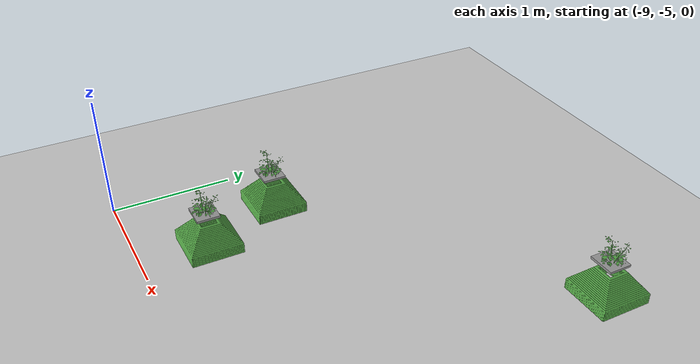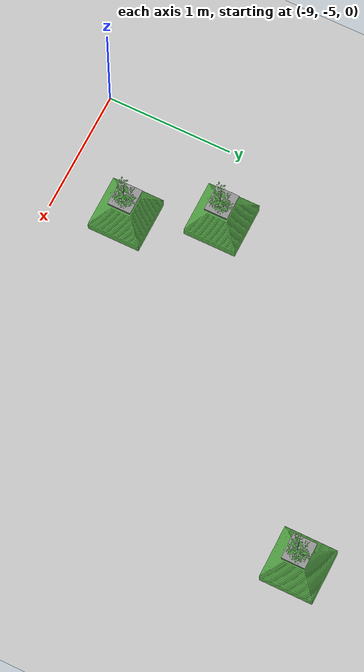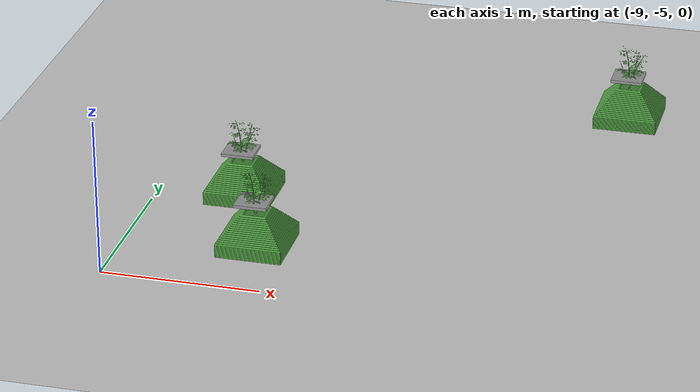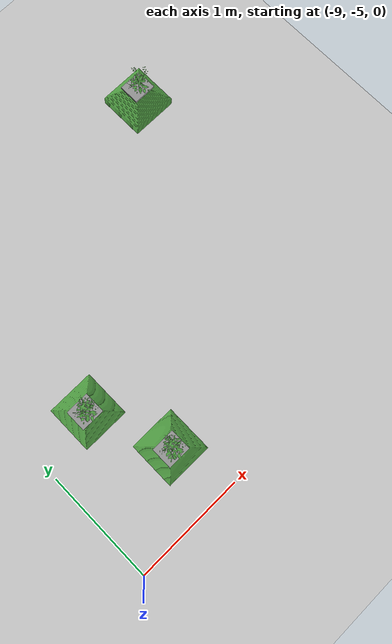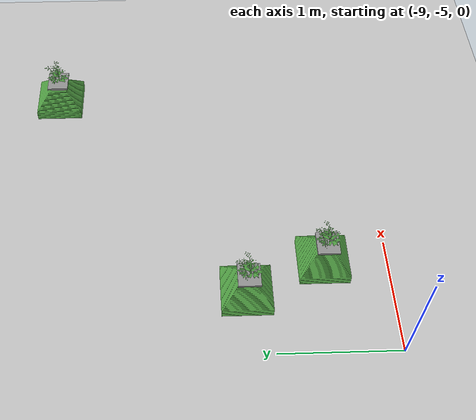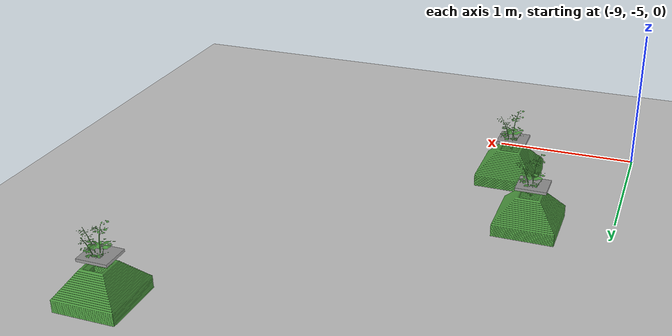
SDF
<sdf version="1.6">
 <world name="default">
  <model name="ground_plane">
   <static>1</static>
   <link name="link">
    <collision name="collision">
     <geometry><plane><normal>0 0 1</normal><size>100 100</size></plane></geometry>
     <surface><friction><ode><mu>100</mu><mu2>50</mu2></ode></friction></surface>
    </collision>
    <visual name="visual">
     <cast_shadows>0</cast_shadows>
     <geometry><plane><normal>0 0 1</normal><size>100 100</size></plane></geometry>
     <material>
      <script><uri>file://media/materials/scripts/gazebo.material</uri><name>Gazebo/Grey</name></script>
     </material>
    </visual>
   </link>
  </model>
  <model name="plant_10">
   <link name="link_0">
    <inertial>
     <mass>1</mass>
     <inertia>
      <ixx>0.0134051</ixx>
      <ixy>0</ixy>
      <ixz>0</ixz>
      <iyy>0.0134051</iyy>
      <iyz>0</iyz>
      <izz>0.0254102</izz>
     </inertia>
    </inertial>
    <gravity>0</gravity>
    <visual name="visual">
     <geometry><mesh><uri>model://square_pot/pot.stl</uri><scale>0.033 0.033 0.02</scale></mesh></geometry>
     <material>
      <lighting>1</lighting>
      <script><uri>file://media/materials/scripts/gazebo.material</uri><name>Gazebo/Grass</name></script>
      <ambient>0.3 0.3 0.3 1</ambient>
      <diffuse>0.7 0.7 0.7 1</diffuse>
      <specular>0.01 0.01 0.01 1</specular>
      <emissive>0 0 0 1</emissive>
      <shader type="vertex"><normal_map>__default__</normal_map></shader>
     </material>
    </visual>
    <collision name="collision">
     <pose>0 0 0.25 0 -0 0</pose>
     <geometry><box><size>0.4 0.4 0.4</size></box></geometry>
     <surface>
      <friction>
       <ode><mu>1</mu><mu2>1</mu2><fdir1>0 0 0</fdir1><slip1>0</slip1><slip2>0</slip2></ode>
       <torsional>
        <coefficient>1</coefficient>
        <patch_radius>0</patch_radius>
        <surface_radius>0</surface_radius>
        <use_patch_radius>1</use_patch_radius>
        <ode><slip>0</slip></ode>
       </torsional>
      </friction>
      <bounce><restitution_coefficient>0</restitution_coefficient><threshold>1e+06</threshold></bounce>
      <contact>
       <collide_without_contact>1</collide_without_contact>
       <collide_without_contact_bitmask>1</collide_without_contact_bitmask>
       <collide_bitmask>1</collide_bitmask>
       <ode>
        <soft_cfm>0</soft_cfm>
        <soft_erp>0.2</soft_erp>
        <kp>1e+13</kp>
        <kd>1</kd>
        <max_vel>0.01</max_vel>
        <min_depth>0</min_depth>
       </ode>
       <bullet>
        <split_impulse>1</split_impulse>
        <split_impulse_penetration_threshold>-0.01</split_impulse_penetration_threshold>
        <soft_cfm>0</soft_cfm>
        <soft_erp>0.2</soft_erp>
        <kp>1e+13</kp>
        <kd>1</kd>
       </bullet>
      </contact>
     </surface>
    </collision>
   </link>
   <link name="link_0_0">
    <pose>-0.011441 -0.008338 0.308474 0 -0 0</pose>
    <inertial>
     <mass>0.000736153</mass>
     <inertia>
      <ixx>2.11165e-06</ixx>
      <ixy>0</ixy>
      <ixz>0</ixz>
      <iyy>2.64382e-06</iyy>
      <iyz>0</iyz>
      <izz>4.70976e-06</izz>
     </inertia>
    </inertial>
    <visual name="visual">
     <geometry><box><size>0.206678 0.18452 0.019291</size></box></geometry>
     <material>
      <lighting>1</lighting>
      <script><uri>file://media/materials/scripts/gazebo.material</uri><name>Gazebo/Grey</name></script>
      <ambient>0.3 0.3 0.3 1</ambient>
      <diffuse>0.7 0.7 0.7 1</diffuse>
      <specular>0.01 0.01 0.01 1</specular>
      <emissive>0 0 0 1</emissive>
     </material>
    </visual>
    <collision name="collision">
     <geometry><box><size>0.206678 0.18452 0.019291</size></box></geometry>
     <surface>
      <friction>
       <ode><mu>1</mu><mu2>1</mu2><fdir1>0 0 0</fdir1><slip1>0</slip1><slip2>0</slip2></ode>
       <torsional>
        <coefficient>1</coefficient>
        <patch_radius>0</patch_radius>
        <surface_radius>0</surface_radius>
        <use_patch_radius>1</use_patch_radius>
        <ode><slip>0</slip></ode>
       </torsional>
      </friction>
      <bounce><restitution_coefficient>0</restitution_coefficient><threshold>1e+06</threshold></bounce>
      <contact>
       <collide_without_contact>0</collide_without_contact>
       <collide_without_contact_bitmask>1</collide_without_contact_bitmask>
       <collide_bitmask>1</collide_bitmask>
       <ode>
        <soft_cfm>0</soft_cfm>
        <soft_erp>0.2</soft_erp>
        <kp>1e+13</kp>
        <kd>1</kd>
        <max_vel>0.01</max_vel>
        <min_depth>0</min_depth>
       </ode>
       <bullet>
        <split_impulse>1</split_impulse>
        <split_impulse_penetration_threshold>-0.01</split_impulse_penetration_threshold>
        <soft_cfm>0</soft_cfm>
        <soft_erp>0.2</soft_erp>
        <kp>1e+13</kp>
        <kd>1</kd>
       </bullet>
      </contact>
     </surface>
    </collision>
   </link>
   <static>1</static>
   <pose>-6.28126 -2.11881 0 0 -0 0</pose>
  </model>
  <model name="plant_54">
   <link name="link_0">
    <inertial>
     <mass>1</mass>
     <inertia>
      <ixx>0.0134051</ixx>
      <ixy>0</ixy>
      <ixz>0</ixz>
      <iyy>0.0134051</iyy>
      <iyz>0</iyz>
      <izz>0.0254102</izz>
     </inertia>
    </inertial>
    <gravity>0</gravity>
    <visual name="visual">
     <geometry><mesh><uri>model://square_pot/pot.stl</uri><scale>0.033 0.033 0.02</scale></mesh></geometry>
     <material>
      <lighting>1</lighting>
      <script><uri>file://media/materials/scripts/gazebo.material</uri><name>Gazebo/Grass</name></script>
      <ambient>0.3 0.3 0.3 1</ambient>
      <diffuse>0.7 0.7 0.7 1</diffuse>
      <specular>0.01 0.01 0.01 1</specular>
      <emissive>0 0 0 1</emissive>
      <shader type="vertex"><normal_map>__default__</normal_map></shader>
     </material>
    </visual>
    <collision name="collision">
     <pose>0 0 0.25 0 -0 0</pose>
     <geometry><box><size>0.4 0.4 0.4</size></box></geometry>
     <surface>
      <friction>
       <ode><mu>1</mu><mu2>1</mu2><fdir1>0 0 0</fdir1><slip1>0</slip1><slip2>0</slip2></ode>
       <torsional>
        <coefficient>1</coefficient>
        <patch_radius>0</patch_radius>
        <surface_radius>0</surface_radius>
        <use_patch_radius>1</use_patch_radius>
        <ode><slip>0</slip></ode>
       </torsional>
      </friction>
      <bounce><restitution_coefficient>0</restitution_coefficient><threshold>1e+06</threshold></bounce>
      <contact>
       <collide_without_contact>1</collide_without_contact>
       <collide_without_contact_bitmask>1</collide_without_contact_bitmask>
       <collide_bitmask>1</collide_bitmask>
       <ode>
        <soft_cfm>0</soft_cfm>
        <soft_erp>0.2</soft_erp>
        <kp>1e+13</kp>
        <kd>1</kd>
        <max_vel>0.01</max_vel>
        <min_depth>0</min_depth>
       </ode>
       <bullet>
        <split_impulse>1</split_impulse>
        <split_impulse_penetration_threshold>-0.01</split_impulse_penetration_threshold>
        <soft_cfm>0</soft_cfm>
        <soft_erp>0.2</soft_erp>
        <kp>1e+13</kp>
        <kd>1</kd>
       </bullet>
      </contact>
     </surface>
    </collision>
   </link>
   <link name="link_0_0">
    <pose>-0.011441 -0.008338 0.308474 0 -0 0</pose>
    <inertial>
     <mass>0.000736153</mass>
     <inertia>
      <ixx>2.11165e-06</ixx>
      <ixy>0</ixy>
      <ixz>0</ixz>
      <iyy>2.64382e-06</iyy>
      <iyz>0</iyz>
      <izz>4.70976e-06</izz>
     </inertia>
    </inertial>
    <visual name="visual">
     <geometry><box><size>0.206678 0.18452 0.019291</size></box></geometry>
     <material>
      <lighting>1</lighting>
      <script><uri>file://media/materials/scripts/gazebo.material</uri><name>Gazebo/Grey</name></script>
      <ambient>0.3 0.3 0.3 1</ambient>
      <diffuse>0.7 0.7 0.7 1</diffuse>
      <specular>0.01 0.01 0.01 1</specular>
      <emissive>0 0 0 1</emissive>
     </material>
    </visual>
    <collision name="collision">
     <geometry><box><size>0.206678 0.18452 0.019291</size></box></geometry>
     <surface>
      <friction>
       <ode><mu>1</mu><mu2>1</mu2><fdir1>0 0 0</fdir1><slip1>0</slip1><slip2>0</slip2></ode>
       <torsional>
        <coefficient>1</coefficient>
        <patch_radius>0</patch_radius>
        <surface_radius>0</surface_radius>
        <use_patch_radius>1</use_patch_radius>
        <ode><slip>0</slip></ode>
       </torsional>
      </friction>
      <bounce><restitution_coefficient>0</restitution_coefficient><threshold>1e+06</threshold></bounce>
      <contact>
       <collide_without_contact>0</collide_without_contact>
       <collide_without_contact_bitmask>1</collide_without_contact_bitmask>
       <collide_bitmask>1</collide_bitmask>
       <ode>
        <soft_cfm>0</soft_cfm>
        <soft_erp>0.2</soft_erp>
        <kp>1e+13</kp>
        <kd>1</kd>
        <max_vel>0.01</max_vel>
        <min_depth>0</min_depth>
       </ode>
       <bullet>
        <split_impulse>1</split_impulse>
        <split_impulse_penetration_threshold>-0.01</split_impulse_penetration_threshold>
        <soft_cfm>0</soft_cfm>
        <soft_erp>0.2</soft_erp>
        <kp>1e+13</kp>
        <kd>1</kd>
       </bullet>
      </contact>
     </surface>
    </collision>
   </link>
   <static>1</static>
   <pose>-8.45649 -3.79638 0 0 -0 0</pose>
  </model>
  <model name="plant_55">
   <link name="link_0">
    <inertial>
     <mass>1</mass>
     <inertia>
      <ixx>0.0134051</ixx>
      <ixy>0</ixy>
      <ixz>0</ixz>
      <iyy>0.0134051</iyy>
      <iyz>0</iyz>
      <izz>0.0254102</izz>
     </inertia>
    </inertial>
    <gravity>0</gravity>
    <visual name="visual">
     <geometry><mesh><uri>model://square_pot/pot.stl</uri><scale>0.033 0.033 0.02</scale></mesh></geometry>
     <material>
      <lighting>1</lighting>
      <script><uri>file://media/materials/scripts/gazebo.material</uri><name>Gazebo/Grass</name></script>
      <ambient>0.3 0.3 0.3 1</ambient>
      <diffuse>0.7 0.7 0.7 1</diffuse>
      <specular>0.01 0.01 0.01 1</specular>
      <emissive>0 0 0 1</emissive>
      <shader type="vertex"><normal_map>__default__</normal_map></shader>
     </material>
    </visual>
    <collision name="collision">
     <pose>0 0 0.25 0 -0 0</pose>
     <geometry><box><size>0.4 0.4 0.4</size></box></geometry>
     <surface>
      <friction>
       <ode><mu>1</mu><mu2>1</mu2><fdir1>0 0 0</fdir1><slip1>0</slip1><slip2>0</slip2></ode>
       <torsional>
        <coefficient>1</coefficient>
        <patch_radius>0</patch_radius>
        <surface_radius>0</surface_radius>
        <use_patch_radius>1</use_patch_radius>
        <ode><slip>0</slip></ode>
       </torsional>
      </friction>
      <bounce><restitution_coefficient>0</restitution_coefficient><threshold>1e+06</threshold></bounce>
      <contact>
       <collide_without_contact>1</collide_without_contact>
       <collide_without_contact_bitmask>1</collide_without_contact_bitmask>
       <collide_bitmask>1</collide_bitmask>
       <ode>
        <soft_cfm>0</soft_cfm>
        <soft_erp>0.2</soft_erp>
        <kp>1e+13</kp>
        <kd>1</kd>
        <max_vel>0.01</max_vel>
        <min_depth>0</min_depth>
       </ode>
       <bullet>
        <split_impulse>1</split_impulse>
        <split_impulse_penetration_threshold>-0.01</split_impulse_penetration_threshold>
        <soft_cfm>0</soft_cfm>
        <soft_erp>0.2</soft_erp>
        <kp>1e+13</kp>
        <kd>1</kd>
       </bullet>
      </contact>
     </surface>
    </collision>
   </link>
   <link name="link_0_0">
    <pose>-0.011441 -0.008338 0.308474 0 -0 0</pose>
    <inertial>
     <mass>0.000736153</mass>
     <inertia>
      <ixx>2.11165e-06</ixx>
      <ixy>0</ixy>
      <ixz>0</ixz>
      <iyy>2.64382e-06</iyy>
      <iyz>0</iyz>
      <izz>4.70976e-06</izz>
     </inertia>
    </inertial>
    <visual name="visual">
     <geometry><box><size>0.206678 0.18452 0.019291</size></box></geometry>
     <material>
      <lighting>1</lighting>
      <script><uri>file://media/materials/scripts/gazebo.material</uri><name>Gazebo/Grey</name></script>
      <ambient>0.3 0.3 0.3 1</ambient>
      <diffuse>0.7 0.7 0.7 1</diffuse>
      <specular>0.01 0.01 0.01 1</specular>
      <emissive>0 0 0 1</emissive>
     </material>
    </visual>
    <collision name="collision">
     <geometry><box><size>0.206678 0.18452 0.019291</size></box></geometry>
     <surface>
      <friction>
       <ode><mu>1</mu><mu2>1</mu2><fdir1>0 0 0</fdir1><slip1>0</slip1><slip2>0</slip2></ode>
       <torsional>
        <coefficient>1</coefficient>
        <patch_radius>0</patch_radius>
        <surface_radius>0</surface_radius>
        <use_patch_radius>1</use_patch_radius>
        <ode><slip>0</slip></ode>
       </torsional>
      </friction>
      <bounce><restitution_coefficient>0</restitution_coefficient><threshold>1e+06</threshold></bounce>
      <contact>
       <collide_without_contact>0</collide_without_contact>
       <collide_without_contact_bitmask>1</collide_without_contact_bitmask>
       <collide_bitmask>1</collide_bitmask>
       <ode>
        <soft_cfm>0</soft_cfm>
        <soft_erp>0.2</soft_erp>
        <kp>1e+13</kp>
        <kd>1</kd>
        <max_vel>0.01</max_vel>
        <min_depth>0</min_depth>
       </ode>
       <bullet>
        <split_impulse>1</split_impulse>
        <split_impulse_penetration_threshold>-0.01</split_impulse_penetration_threshold>
        <soft_cfm>0</soft_cfm>
        <soft_erp>0.2</soft_erp>
        <kp>1e+13</kp>
        <kd>1</kd>
       </bullet>
      </contact>
     </surface>
    </collision>
   </link>
   <static>1</static>
   <pose>-8.1795 -4.45133 0 0 -0 0</pose>
  </model>
 </world>
</sdf>
